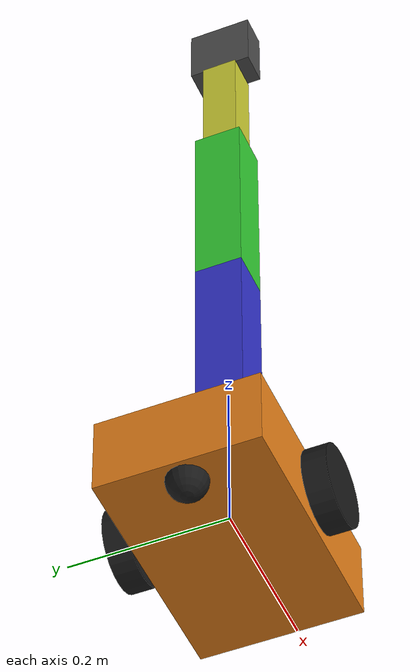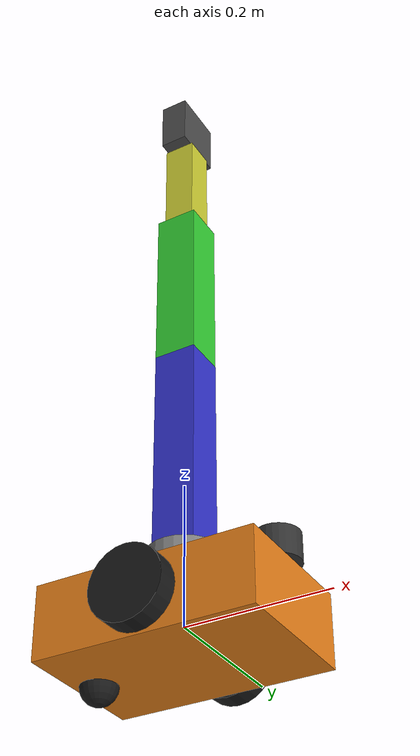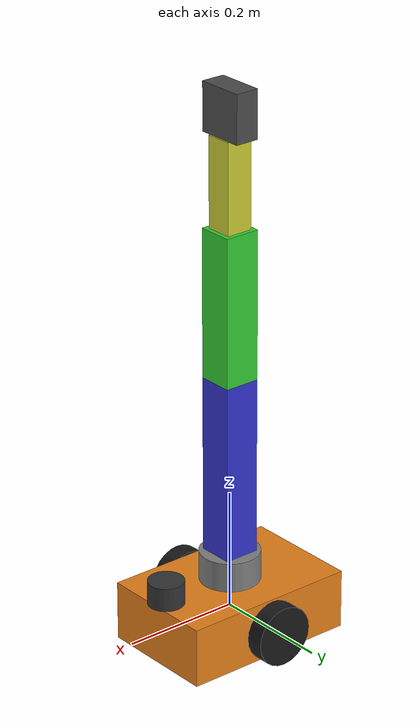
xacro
<?xml version="1.0"?>
<robot name="mobile_manipulator" xmlns:xacro="http://www.ros.org/wiki/xacro">

  <!-- === Chassis: identical to Chapter 7's simple_diffdrive.urdf.xacro === -->
  <xacro:property name="chassis_length" value="0.3"/>
  <xacro:property name="chassis_width" value="0.2"/>
  <xacro:property name="chassis_height" value="0.1"/>
  <xacro:property name="wheel_radius" value="0.05"/>
  <xacro:property name="wheel_width" value="0.03"/>
  <xacro:property name="wheel_separation" value="0.24"/>

  <link name="base_link">
    <visual>
      <geometry><box size="${chassis_length} ${chassis_width} ${chassis_height}"/></geometry>
      <material name="orange"><color rgba="0.9 0.5 0.1 1"/></material>
    </visual>
    <collision>
      <geometry><box size="${chassis_length} ${chassis_width} ${chassis_height}"/></geometry>
    </collision>
    <inertial>
      <!-- Higher mass than Ch7's chassis alone — accounts for the arm's
           added weight sitting on top, a detail worth getting right
           since it affects the whole robot's driving dynamics. -->
      <mass value="4.0"/>
      <inertia ixx="0.04" ixy="0" ixz="0" iyy="0.06" iyz="0" izz="0.08"/>
    </inertial>
  </link>

  <link name="left_wheel">
    <visual>
      <origin xyz="0 0 0" rpy="1.5708 0 0"/>
      <geometry><cylinder radius="${wheel_radius}" length="${wheel_width}"/></geometry>
      <material name="black"><color rgba="0.1 0.1 0.1 1"/></material>
    </visual>
    <collision>
      <origin xyz="0 0 0" rpy="1.5708 0 0"/>
      <geometry><cylinder radius="${wheel_radius}" length="${wheel_width}"/></geometry>
    </collision>
    <inertial>
      <mass value="0.2"/>
      <inertia ixx="0.0005" ixy="0" ixz="0" iyy="0.0005" iyz="0" izz="0.0005"/>
    </inertial>
  </link>

  <joint name="left_wheel_joint" type="continuous">
    <parent link="base_link"/>
    <child link="left_wheel"/>
    <origin xyz="0 ${wheel_separation/2} -${wheel_radius - chassis_height/2}" rpy="0 0 0"/>
    <axis xyz="0 1 0"/>
  </joint>

  <link name="right_wheel">
    <visual>
      <origin xyz="0 0 0" rpy="1.5708 0 0"/>
      <geometry><cylinder radius="${wheel_radius}" length="${wheel_width}"/></geometry>
      <material name="black"><color rgba="0.1 0.1 0.1 1"/></material>
    </visual>
    <collision>
      <origin xyz="0 0 0" rpy="1.5708 0 0"/>
      <geometry><cylinder radius="${wheel_radius}" length="${wheel_width}"/></geometry>
    </collision>
    <inertial>
      <mass value="0.2"/>
      <inertia ixx="0.0005" ixy="0" ixz="0" iyy="0.0005" iyz="0" izz="0.0005"/>
    </inertial>
  </link>

  <joint name="right_wheel_joint" type="continuous">
    <parent link="base_link"/>
    <child link="right_wheel"/>
    <origin xyz="0 -${wheel_separation/2} -${wheel_radius - chassis_height/2}" rpy="0 0 0"/>
    <axis xyz="0 1 0"/>
  </joint>

  <link name="caster_wheel">
    <visual>
      <geometry><sphere radius="0.025"/></geometry>
      <material name="black"><color rgba="0.1 0.1 0.1 1"/></material>
    </visual>
    <collision>
      <geometry><sphere radius="0.025"/></geometry>
    </collision>
    <inertial>
      <mass value="0.05"/>
      <inertia ixx="0.0001" ixy="0" ixz="0" iyy="0.0001" iyz="0" izz="0.0001"/>
    </inertial>
  </link>

  <joint name="caster_joint" type="fixed">
    <parent link="base_link"/>
    <child link="caster_wheel"/>
    <origin xyz="-0.12 0 -${chassis_height/2}" rpy="0 0 0"/>
  </joint>

  <gazebo>
    <plugin filename="gz-sim-diff-drive-system" name="gz::sim::systems::DiffDrive">
      <left_joint>left_wheel_joint</left_joint>
      <right_joint>right_wheel_joint</right_joint>
      <wheel_separation>${wheel_separation}</wheel_separation>
      <wheel_radius>${wheel_radius}</wheel_radius>
      <topic>cmd_vel</topic>
      <odom_topic>odom</odom_topic>
      <frame_id>odom</frame_id>
      <child_frame_id>base_link</child_frame_id>
    </plugin>
    <plugin filename="gz-sim-joint-state-publisher-system" name="gz::sim::systems::JointStatePublisher"/>
  </gazebo>

  <!-- === Simplified lidar for Nav2 (see Chapter 9) === -->
  <link name="lidar_link">
    <visual>
      <geometry><cylinder radius="0.03" length="0.04"/></geometry>
      <material name="dark_gray"><color rgba="0.2 0.2 0.2 1"/></material>
    </visual>
    <collision>
      <geometry><cylinder radius="0.03" length="0.04"/></geometry>
    </collision>
    <inertial>
      <mass value="0.1"/>
      <inertia ixx="0.00005" ixy="0" ixz="0" iyy="0.00005" iyz="0" izz="0.00005"/>
    </inertial>
  </link>

  <joint name="lidar_joint" type="fixed">
    <parent link="base_link"/>
    <child link="lidar_link"/>
    <!-- Front edge of the chassis, clear of the arm mounted at the
         center/rear (see arm_mount_joint below) so the arm doesn't
         occlude the lidar's field of view. -->
    <origin xyz="${chassis_length/2 - 0.02} 0 ${chassis_height/2 + 0.02}" rpy="0 0 0"/>
  </joint>

  <gazebo reference="lidar_link">
    <sensor type="gpu_lidar" name="lidar">
      <update_rate>10</update_rate>
      <lidar>
        <scan>
          <horizontal><samples>360</samples><min_angle>-3.14159</min_angle><max_angle>3.14159</max_angle></horizontal>
        </scan>
        <range><min>0.1</min><max>12.0</max></range>
      </lidar>
      <topic>scan</topic>
    </sensor>
  </gazebo>

  <!-- === Arm: Chapter 12's arm_with_gripper, mounted on the chassis === -->
  <xacro:property name="link1_length" value="0.3"/>
  <xacro:property name="link2_length" value="0.25"/>
  <xacro:property name="link3_length" value="0.15"/>
  <xacro:property name="arm_link_radius" value="0.03"/>
  <xacro:property name="arm_link_mass" value="0.5"/>

  <link name="arm_base_link">
    <visual>
      <geometry><cylinder radius="0.05" length="0.05"/></geometry>
      <material name="gray"><color rgba="0.5 0.5 0.5 1"/></material>
    </visual>
    <collision>
      <geometry><cylinder radius="0.05" length="0.05"/></geometry>
    </collision>
    <inertial>
      <mass value="1.0"/>
      <inertia ixx="0.01" ixy="0" ixz="0" iyy="0.01" iyz="0" izz="0.01"/>
    </inertial>
  </link>

  <joint name="arm_mount_joint" type="fixed">
    <parent link="base_link"/>
    <child link="arm_base_link"/>
    <origin xyz="0 0 ${chassis_height/2 + 0.025}" rpy="0 0 0"/>
  </joint>

  <link name="link1">
    <visual>
      <origin xyz="0 0 ${link1_length/2}" rpy="0 0 0"/>
      <geometry><box size="${arm_link_radius*2} ${arm_link_radius*2} ${link1_length}"/></geometry>
      <material name="blue"><color rgba="0.2 0.2 0.8 1"/></material>
    </visual>
    <collision>
      <origin xyz="0 0 ${link1_length/2}" rpy="0 0 0"/>
      <geometry><box size="${arm_link_radius*2} ${arm_link_radius*2} ${link1_length}"/></geometry>
    </collision>
    <inertial>
      <origin xyz="0 0 ${link1_length/2}" rpy="0 0 0"/>
      <mass value="${arm_link_mass}"/>
      <inertia ixx="0.01" ixy="0" ixz="0" iyy="0.01" iyz="0" izz="0.005"/>
    </inertial>
  </link>

  <joint name="joint1" type="revolute">
    <parent link="arm_base_link"/>
    <child link="link1"/>
    <origin xyz="0 0 0.025" rpy="0 0 0"/>
    <axis xyz="0 0 1"/>
    <limit lower="-3.14159" upper="3.14159" effort="10.0" velocity="1.0"/>
  </joint>

  <link name="link2">
    <visual>
      <origin xyz="0 0 ${link2_length/2}" rpy="0 0 0"/>
      <geometry><box size="${arm_link_radius*2} ${arm_link_radius*2} ${link2_length}"/></geometry>
      <material name="green"><color rgba="0.2 0.8 0.2 1"/></material>
    </visual>
    <collision>
      <origin xyz="0 0 ${link2_length/2}" rpy="0 0 0"/>
      <geometry><box size="${arm_link_radius*2} ${arm_link_radius*2} ${link2_length}"/></geometry>
    </collision>
    <inertial>
      <origin xyz="0 0 ${link2_length/2}" rpy="0 0 0"/>
      <mass value="${arm_link_mass * 0.7}"/>
      <inertia ixx="0.005" ixy="0" ixz="0" iyy="0.005" iyz="0" izz="0.002"/>
    </inertial>
  </link>

  <joint name="joint2" type="revolute">
    <parent link="link1"/>
    <child link="link2"/>
    <origin xyz="0 0 ${link1_length}" rpy="0 0 0"/>
    <axis xyz="0 1 0"/>
    <limit lower="-2.0" upper="2.0" effort="10.0" velocity="1.0"/>
  </joint>

  <link name="link3">
    <visual>
      <origin xyz="0 0 ${link3_length/2}" rpy="0 0 0"/>
      <geometry><box size="${arm_link_radius*1.5} ${arm_link_radius*1.5} ${link3_length}"/></geometry>
      <material name="yellow"><color rgba="0.8 0.8 0.2 1"/></material>
    </visual>
    <collision>
      <origin xyz="0 0 ${link3_length/2}" rpy="0 0 0"/>
      <geometry><box size="${arm_link_radius*1.5} ${arm_link_radius*1.5} ${link3_length}"/></geometry>
    </collision>
    <inertial>
      <origin xyz="0 0 ${link3_length/2}" rpy="0 0 0"/>
      <mass value="${arm_link_mass * 0.4}"/>
      <inertia ixx="0.002" ixy="0" ixz="0" iyy="0.002" iyz="0" izz="0.001"/>
    </inertial>
  </link>

  <joint name="joint3" type="revolute">
    <parent link="link2"/>
    <child link="link3"/>
    <origin xyz="0 0 ${link2_length}" rpy="0 0 0"/>
    <axis xyz="0 1 0"/>
    <limit lower="-2.0" upper="2.0" effort="5.0" velocity="1.0"/>
  </joint>

  <link name="gripper">
    <visual>
      <origin xyz="0 0 0.04" rpy="0 0 0"/>
      <geometry><box size="0.04 0.08 0.08"/></geometry>
      <material name="dark_gray"><color rgba="0.3 0.3 0.3 1"/></material>
    </visual>
    <collision>
      <origin xyz="0 0 0.04" rpy="0 0 0"/>
      <geometry><box size="0.04 0.08 0.08"/></geometry>
    </collision>
    <inertial>
      <origin xyz="0 0 0.04" rpy="0 0 0"/>
      <mass value="0.1"/>
      <inertia ixx="0.0001" ixy="0" ixz="0" iyy="0.0001" iyz="0" izz="0.0001"/>
    </inertial>
  </link>

  <joint name="gripper_joint" type="fixed">
    <parent link="link3"/>
    <child link="gripper"/>
    <origin xyz="0 0 ${link3_length}" rpy="0 0 0"/>
  </joint>

</robot>
